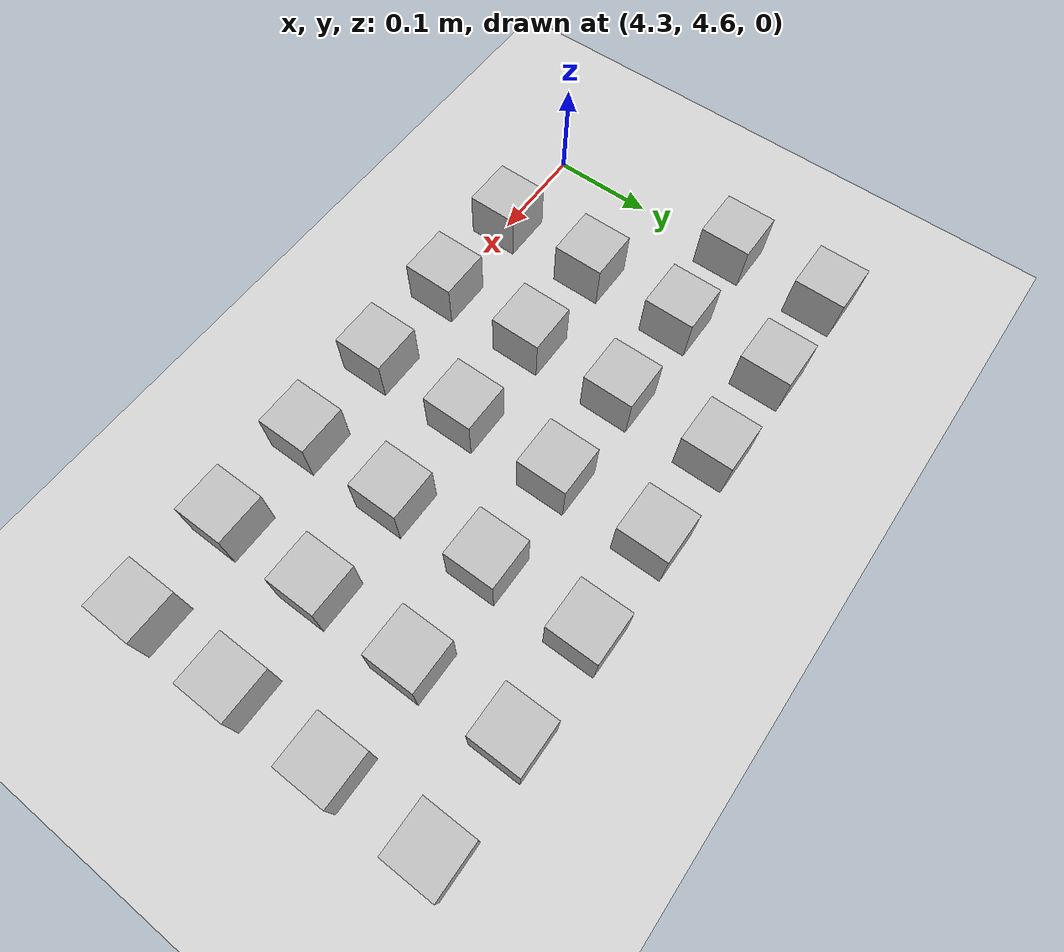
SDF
<sdf version="1.6">
 <world name="default">
  <model name="ground_plane">
   <static>1</static>
   <link name="link">
    <collision name="collision">
     <geometry><plane><normal>0 0 1</normal><size>100 100</size></plane></geometry>
     <surface><friction><ode><mu>100</mu><mu2>50</mu2></ode></friction></surface>
    </collision>
    <visual name="visual">
     <cast_shadows>0</cast_shadows>
     <geometry><plane><normal>0 0 1</normal><size>100 100</size></plane></geometry>
     <material>
      <script><uri>file://media/materials/scripts/gazebo.material</uri><name>Gazebo/Grey</name></script>
     </material>
    </visual>
   </link>
  </model>
  <model name="at226">
   <static>0</static>
   <link name="link">
    <inertial>
     <mass>0.01</mass>
     <inertia><ixx>4e-05</ixx><ixy>0</ixy><ixz>0</ixz><iyy>4e-05</iyy><iyz>0</iyz><izz>4e-05</izz></inertia>
    </inertial>
    <visual name="visual">
     <geometry><box><size>0.05 0.05 0.05</size></box></geometry>
     <material>
      <script>
       <uri>model://at0/materials/scripts</uri>
       <uri>model://at0/materials/textures</uri>
       <name>at0/Diffuse</name>
      </script>
     </material>
    </visual>
    <collision name="collision">
     <geometry><box><size>0.05 0.05 0.05</size></box></geometry>
     <surface><friction><ode><mu>0.8</mu><mu2>0.7</mu2></ode></friction></surface>
    </collision>
   </link>
   <pose>4.4 4.6 0.025 0 -0 0</pose>
  </model>
  <model name="at227">
   <static>0</static>
   <link name="link">
    <inertial>
     <mass>0.01</mass>
     <inertia><ixx>4e-05</ixx><ixy>0</ixy><ixz>0</ixz><iyy>4e-05</iyy><iyz>0</iyz><izz>4e-05</izz></inertia>
    </inertial>
    <visual name="visual">
     <geometry><box><size>0.05 0.05 0.05</size></box></geometry>
     <material>
      <script>
       <uri>model://at0/materials/scripts</uri>
       <uri>model://at0/materials/textures</uri>
       <name>at0/Diffuse</name>
      </script>
     </material>
    </visual>
    <collision name="collision">
     <geometry><box><size>0.05 0.05 0.05</size></box></geometry>
     <surface><friction><ode><mu>0.8</mu><mu2>0.7</mu2></ode></friction></surface>
    </collision>
   </link>
   <pose>4.5 4.6 0.025 0 -0 0</pose>
  </model>
  <model name="at228">
   <static>0</static>
   <link name="link">
    <inertial>
     <mass>0.01</mass>
     <inertia><ixx>4e-05</ixx><ixy>0</ixy><ixz>0</ixz><iyy>4e-05</iyy><iyz>0</iyz><izz>4e-05</izz></inertia>
    </inertial>
    <visual name="visual">
     <geometry><box><size>0.05 0.05 0.05</size></box></geometry>
     <material>
      <script>
       <uri>model://at0/materials/scripts</uri>
       <uri>model://at0/materials/textures</uri>
       <name>at0/Diffuse</name>
      </script>
     </material>
    </visual>
    <collision name="collision">
     <geometry><box><size>0.05 0.05 0.05</size></box></geometry>
     <surface><friction><ode><mu>0.8</mu><mu2>0.7</mu2></ode></friction></surface>
    </collision>
   </link>
   <pose>4.6 4.6 0.025 0 -0 0</pose>
  </model>
  <model name="at229">
   <static>0</static>
   <link name="link">
    <inertial>
     <mass>0.01</mass>
     <inertia><ixx>4e-05</ixx><ixy>0</ixy><ixz>0</ixz><iyy>4e-05</iyy><iyz>0</iyz><izz>4e-05</izz></inertia>
    </inertial>
    <visual name="visual">
     <geometry><box><size>0.05 0.05 0.05</size></box></geometry>
     <material>
      <script>
       <uri>model://at0/materials/scripts</uri>
       <uri>model://at0/materials/textures</uri>
       <name>at0/Diffuse</name>
      </script>
     </material>
    </visual>
    <collision name="collision">
     <geometry><box><size>0.05 0.05 0.05</size></box></geometry>
     <surface><friction><ode><mu>0.8</mu><mu2>0.7</mu2></ode></friction></surface>
    </collision>
   </link>
   <pose>4.7 4.6 0.025 0 -0 0</pose>
  </model>
  <model name="at230">
   <static>0</static>
   <link name="link">
    <inertial>
     <mass>0.01</mass>
     <inertia><ixx>4e-05</ixx><ixy>0</ixy><ixz>0</ixz><iyy>4e-05</iyy><iyz>0</iyz><izz>4e-05</izz></inertia>
    </inertial>
    <visual name="visual">
     <geometry><box><size>0.05 0.05 0.05</size></box></geometry>
     <material>
      <script>
       <uri>model://at0/materials/scripts</uri>
       <uri>model://at0/materials/textures</uri>
       <name>at0/Diffuse</name>
      </script>
     </material>
    </visual>
    <collision name="collision">
     <geometry><box><size>0.05 0.05 0.05</size></box></geometry>
     <surface><friction><ode><mu>0.8</mu><mu2>0.7</mu2></ode></friction></surface>
    </collision>
   </link>
   <pose>4.8 4.6 0.025 0 -0 0</pose>
  </model>
  <model name="at231">
   <static>0</static>
   <link name="link">
    <inertial>
     <mass>0.01</mass>
     <inertia><ixx>4e-05</ixx><ixy>0</ixy><ixz>0</ixz><iyy>4e-05</iyy><iyz>0</iyz><izz>4e-05</izz></inertia>
    </inertial>
    <visual name="visual">
     <geometry><box><size>0.05 0.05 0.05</size></box></geometry>
     <material>
      <script>
       <uri>model://at0/materials/scripts</uri>
       <uri>model://at0/materials/textures</uri>
       <name>at0/Diffuse</name>
      </script>
     </material>
    </visual>
    <collision name="collision">
     <geometry><box><size>0.05 0.05 0.05</size></box></geometry>
     <surface><friction><ode><mu>0.8</mu><mu2>0.7</mu2></ode></friction></surface>
    </collision>
   </link>
   <pose>4.9 4.6 0.025 0 -0 0</pose>
  </model>
  <model name="at234">
   <static>0</static>
   <link name="link">
    <inertial>
     <mass>0.01</mass>
     <inertia><ixx>4e-05</ixx><ixy>0</ixy><ixz>0</ixz><iyy>4e-05</iyy><iyz>0</iyz><izz>4e-05</izz></inertia>
    </inertial>
    <visual name="visual">
     <geometry><box><size>0.05 0.05 0.05</size></box></geometry>
     <material>
      <script>
       <uri>model://at0/materials/scripts</uri>
       <uri>model://at0/materials/textures</uri>
       <name>at0/Diffuse</name>
      </script>
     </material>
    </visual>
    <collision name="collision">
     <geometry><box><size>0.05 0.05 0.05</size></box></geometry>
     <surface><friction><ode><mu>0.8</mu><mu2>0.7</mu2></ode></friction></surface>
    </collision>
   </link>
   <pose>4.4 4.7 0.025 0 -0 0</pose>
  </model>
  <model name="at235">
   <static>0</static>
   <link name="link">
    <inertial>
     <mass>0.01</mass>
     <inertia><ixx>4e-05</ixx><ixy>0</ixy><ixz>0</ixz><iyy>4e-05</iyy><iyz>0</iyz><izz>4e-05</izz></inertia>
    </inertial>
    <visual name="visual">
     <geometry><box><size>0.05 0.05 0.05</size></box></geometry>
     <material>
      <script>
       <uri>model://at0/materials/scripts</uri>
       <uri>model://at0/materials/textures</uri>
       <name>at0/Diffuse</name>
      </script>
     </material>
    </visual>
    <collision name="collision">
     <geometry><box><size>0.05 0.05 0.05</size></box></geometry>
     <surface><friction><ode><mu>0.8</mu><mu2>0.7</mu2></ode></friction></surface>
    </collision>
   </link>
   <pose>4.5 4.7 0.025 0 -0 0</pose>
  </model>
  <model name="at236">
   <static>0</static>
   <link name="link">
    <inertial>
     <mass>0.01</mass>
     <inertia><ixx>4e-05</ixx><ixy>0</ixy><ixz>0</ixz><iyy>4e-05</iyy><iyz>0</iyz><izz>4e-05</izz></inertia>
    </inertial>
    <visual name="visual">
     <geometry><box><size>0.05 0.05 0.05</size></box></geometry>
     <material>
      <script>
       <uri>model://at0/materials/scripts</uri>
       <uri>model://at0/materials/textures</uri>
       <name>at0/Diffuse</name>
      </script>
     </material>
    </visual>
    <collision name="collision">
     <geometry><box><size>0.05 0.05 0.05</size></box></geometry>
     <surface><friction><ode><mu>0.8</mu><mu2>0.7</mu2></ode></friction></surface>
    </collision>
   </link>
   <pose>4.6 4.7 0.025 0 -0 0</pose>
  </model>
  <model name="at237">
   <static>0</static>
   <link name="link">
    <inertial>
     <mass>0.01</mass>
     <inertia><ixx>4e-05</ixx><ixy>0</ixy><ixz>0</ixz><iyy>4e-05</iyy><iyz>0</iyz><izz>4e-05</izz></inertia>
    </inertial>
    <visual name="visual">
     <geometry><box><size>0.05 0.05 0.05</size></box></geometry>
     <material>
      <script>
       <uri>model://at0/materials/scripts</uri>
       <uri>model://at0/materials/textures</uri>
       <name>at0/Diffuse</name>
      </script>
     </material>
    </visual>
    <collision name="collision">
     <geometry><box><size>0.05 0.05 0.05</size></box></geometry>
     <surface><friction><ode><mu>0.8</mu><mu2>0.7</mu2></ode></friction></surface>
    </collision>
   </link>
   <pose>4.7 4.7 0.025 0 -0 0</pose>
  </model>
  <model name="at238">
   <static>0</static>
   <link name="link">
    <inertial>
     <mass>0.01</mass>
     <inertia><ixx>4e-05</ixx><ixy>0</ixy><ixz>0</ixz><iyy>4e-05</iyy><iyz>0</iyz><izz>4e-05</izz></inertia>
    </inertial>
    <visual name="visual">
     <geometry><box><size>0.05 0.05 0.05</size></box></geometry>
     <material>
      <script>
       <uri>model://at0/materials/scripts</uri>
       <uri>model://at0/materials/textures</uri>
       <name>at0/Diffuse</name>
      </script>
     </material>
    </visual>
    <collision name="collision">
     <geometry><box><size>0.05 0.05 0.05</size></box></geometry>
     <surface><friction><ode><mu>0.8</mu><mu2>0.7</mu2></ode></friction></surface>
    </collision>
   </link>
   <pose>4.8 4.7 0.025 0 -0 0</pose>
  </model>
  <model name="at239">
   <static>0</static>
   <link name="link">
    <inertial>
     <mass>0.01</mass>
     <inertia><ixx>4e-05</ixx><ixy>0</ixy><ixz>0</ixz><iyy>4e-05</iyy><iyz>0</iyz><izz>4e-05</izz></inertia>
    </inertial>
    <visual name="visual">
     <geometry><box><size>0.05 0.05 0.05</size></box></geometry>
     <material>
      <script>
       <uri>model://at0/materials/scripts</uri>
       <uri>model://at0/materials/textures</uri>
       <name>at0/Diffuse</name>
      </script>
     </material>
    </visual>
    <collision name="collision">
     <geometry><box><size>0.05 0.05 0.05</size></box></geometry>
     <surface><friction><ode><mu>0.8</mu><mu2>0.7</mu2></ode></friction></surface>
    </collision>
   </link>
   <pose>4.9 4.7 0.025 0 -0 0</pose>
  </model>
  <model name="at241">
   <static>0</static>
   <link name="link">
    <inertial>
     <mass>0.01</mass>
     <inertia><ixx>4e-05</ixx><ixy>0</ixy><ixz>0</ixz><iyy>4e-05</iyy><iyz>0</iyz><izz>4e-05</izz></inertia>
    </inertial>
    <visual name="visual">
     <geometry><box><size>0.05 0.05 0.05</size></box></geometry>
     <material>
      <script>
       <uri>model://at0/materials/scripts</uri>
       <uri>model://at0/materials/textures</uri>
       <name>at0/Diffuse</name>
      </script>
     </material>
    </visual>
    <collision name="collision">
     <geometry><box><size>0.05 0.05 0.05</size></box></geometry>
     <surface><friction><ode><mu>0.8</mu><mu2>0.7</mu2></ode></friction></surface>
    </collision>
   </link>
   <pose>4.3 4.8 0.025 0 -0 0</pose>
  </model>
  <model name="at242">
   <static>0</static>
   <link name="link">
    <inertial>
     <mass>0.01</mass>
     <inertia><ixx>4e-05</ixx><ixy>0</ixy><ixz>0</ixz><iyy>4e-05</iyy><iyz>0</iyz><izz>4e-05</izz></inertia>
    </inertial>
    <visual name="visual">
     <geometry><box><size>0.05 0.05 0.05</size></box></geometry>
     <material>
      <script>
       <uri>model://at0/materials/scripts</uri>
       <uri>model://at0/materials/textures</uri>
       <name>at0/Diffuse</name>
      </script>
     </material>
    </visual>
    <collision name="collision">
     <geometry><box><size>0.05 0.05 0.05</size></box></geometry>
     <surface><friction><ode><mu>0.8</mu><mu2>0.7</mu2></ode></friction></surface>
    </collision>
   </link>
   <pose>4.4 4.8 0.025 0 -0 0</pose>
  </model>
  <model name="at243">
   <static>0</static>
   <link name="link">
    <inertial>
     <mass>0.01</mass>
     <inertia><ixx>4e-05</ixx><ixy>0</ixy><ixz>0</ixz><iyy>4e-05</iyy><iyz>0</iyz><izz>4e-05</izz></inertia>
    </inertial>
    <visual name="visual">
     <geometry><box><size>0.05 0.05 0.05</size></box></geometry>
     <material>
      <script>
       <uri>model://at0/materials/scripts</uri>
       <uri>model://at0/materials/textures</uri>
       <name>at0/Diffuse</name>
      </script>
     </material>
    </visual>
    <collision name="collision">
     <geometry><box><size>0.05 0.05 0.05</size></box></geometry>
     <surface><friction><ode><mu>0.8</mu><mu2>0.7</mu2></ode></friction></surface>
    </collision>
   </link>
   <pose>4.5 4.8 0.025 0 -0 0</pose>
  </model>
  <model name="at244">
   <static>0</static>
   <link name="link">
    <inertial>
     <mass>0.01</mass>
     <inertia><ixx>4e-05</ixx><ixy>0</ixy><ixz>0</ixz><iyy>4e-05</iyy><iyz>0</iyz><izz>4e-05</izz></inertia>
    </inertial>
    <visual name="visual">
     <geometry><box><size>0.05 0.05 0.05</size></box></geometry>
     <material>
      <script>
       <uri>model://at0/materials/scripts</uri>
       <uri>model://at0/materials/textures</uri>
       <name>at0/Diffuse</name>
      </script>
     </material>
    </visual>
    <collision name="collision">
     <geometry><box><size>0.05 0.05 0.05</size></box></geometry>
     <surface><friction><ode><mu>0.8</mu><mu2>0.7</mu2></ode></friction></surface>
    </collision>
   </link>
   <pose>4.6 4.8 0.025 0 -0 0</pose>
  </model>
  <model name="at245">
   <static>0</static>
   <link name="link">
    <inertial>
     <mass>0.01</mass>
     <inertia><ixx>4e-05</ixx><ixy>0</ixy><ixz>0</ixz><iyy>4e-05</iyy><iyz>0</iyz><izz>4e-05</izz></inertia>
    </inertial>
    <visual name="visual">
     <geometry><box><size>0.05 0.05 0.05</size></box></geometry>
     <material>
      <script>
       <uri>model://at0/materials/scripts</uri>
       <uri>model://at0/materials/textures</uri>
       <name>at0/Diffuse</name>
      </script>
     </material>
    </visual>
    <collision name="collision">
     <geometry><box><size>0.05 0.05 0.05</size></box></geometry>
     <surface><friction><ode><mu>0.8</mu><mu2>0.7</mu2></ode></friction></surface>
    </collision>
   </link>
   <pose>4.7 4.8 0.025 0 -0 0</pose>
  </model>
  <model name="at246">
   <static>0</static>
   <link name="link">
    <inertial>
     <mass>0.01</mass>
     <inertia><ixx>4e-05</ixx><ixy>0</ixy><ixz>0</ixz><iyy>4e-05</iyy><iyz>0</iyz><izz>4e-05</izz></inertia>
    </inertial>
    <visual name="visual">
     <geometry><box><size>0.05 0.05 0.05</size></box></geometry>
     <material>
      <script>
       <uri>model://at0/materials/scripts</uri>
       <uri>model://at0/materials/textures</uri>
       <name>at0/Diffuse</name>
      </script>
     </material>
    </visual>
    <collision name="collision">
     <geometry><box><size>0.05 0.05 0.05</size></box></geometry>
     <surface><friction><ode><mu>0.8</mu><mu2>0.7</mu2></ode></friction></surface>
    </collision>
   </link>
   <pose>4.8 4.8 0.025 0 -0 0</pose>
  </model>
  <model name="at247">
   <static>0</static>
   <link name="link">
    <inertial>
     <mass>0.01</mass>
     <inertia><ixx>4e-05</ixx><ixy>0</ixy><ixz>0</ixz><iyy>4e-05</iyy><iyz>0</iyz><izz>4e-05</izz></inertia>
    </inertial>
    <visual name="visual">
     <geometry><box><size>0.05 0.05 0.05</size></box></geometry>
     <material>
      <script>
       <uri>model://at0/materials/scripts</uri>
       <uri>model://at0/materials/textures</uri>
       <name>at0/Diffuse</name>
      </script>
     </material>
    </visual>
    <collision name="collision">
     <geometry><box><size>0.05 0.05 0.05</size></box></geometry>
     <surface><friction><ode><mu>0.8</mu><mu2>0.7</mu2></ode></friction></surface>
    </collision>
   </link>
   <pose>4.9 4.8 0.025 0 -0 0</pose>
  </model>
  <model name="at249">
   <static>0</static>
   <link name="link">
    <inertial>
     <mass>0.01</mass>
     <inertia><ixx>4e-05</ixx><ixy>0</ixy><ixz>0</ixz><iyy>4e-05</iyy><iyz>0</iyz><izz>4e-05</izz></inertia>
    </inertial>
    <visual name="visual">
     <geometry><box><size>0.05 0.05 0.05</size></box></geometry>
     <material>
      <script>
       <uri>model://at0/materials/scripts</uri>
       <uri>model://at0/materials/textures</uri>
       <name>at0/Diffuse</name>
      </script>
     </material>
    </visual>
    <collision name="collision">
     <geometry><box><size>0.05 0.05 0.05</size></box></geometry>
     <surface><friction><ode><mu>0.8</mu><mu2>0.7</mu2></ode></friction></surface>
    </collision>
   </link>
   <pose>4.3 4.9 0.025 0 -0 0</pose>
  </model>
  <model name="at250">
   <static>0</static>
   <link name="link">
    <inertial>
     <mass>0.01</mass>
     <inertia><ixx>4e-05</ixx><ixy>0</ixy><ixz>0</ixz><iyy>4e-05</iyy><iyz>0</iyz><izz>4e-05</izz></inertia>
    </inertial>
    <visual name="visual">
     <geometry><box><size>0.05 0.05 0.05</size></box></geometry>
     <material>
      <script>
       <uri>model://at0/materials/scripts</uri>
       <uri>model://at0/materials/textures</uri>
       <name>at0/Diffuse</name>
      </script>
     </material>
    </visual>
    <collision name="collision">
     <geometry><box><size>0.05 0.05 0.05</size></box></geometry>
     <surface><friction><ode><mu>0.8</mu><mu2>0.7</mu2></ode></friction></surface>
    </collision>
   </link>
   <pose>4.4 4.9 0.025 0 -0 0</pose>
  </model>
  <model name="at251">
   <static>0</static>
   <link name="link">
    <inertial>
     <mass>0.01</mass>
     <inertia><ixx>4e-05</ixx><ixy>0</ixy><ixz>0</ixz><iyy>4e-05</iyy><iyz>0</iyz><izz>4e-05</izz></inertia>
    </inertial>
    <visual name="visual">
     <geometry><box><size>0.05 0.05 0.05</size></box></geometry>
     <material>
      <script>
       <uri>model://at0/materials/scripts</uri>
       <uri>model://at0/materials/textures</uri>
       <name>at0/Diffuse</name>
      </script>
     </material>
    </visual>
    <collision name="collision">
     <geometry><box><size>0.05 0.05 0.05</size></box></geometry>
     <surface><friction><ode><mu>0.8</mu><mu2>0.7</mu2></ode></friction></surface>
    </collision>
   </link>
   <pose>4.5 4.9 0.025 0 -0 0</pose>
  </model>
  <model name="at252">
   <static>0</static>
   <link name="link">
    <inertial>
     <mass>0.01</mass>
     <inertia><ixx>4e-05</ixx><ixy>0</ixy><ixz>0</ixz><iyy>4e-05</iyy><iyz>0</iyz><izz>4e-05</izz></inertia>
    </inertial>
    <visual name="visual">
     <geometry><box><size>0.05 0.05 0.05</size></box></geometry>
     <material>
      <script>
       <uri>model://at0/materials/scripts</uri>
       <uri>model://at0/materials/textures</uri>
       <name>at0/Diffuse</name>
      </script>
     </material>
    </visual>
    <collision name="collision">
     <geometry><box><size>0.05 0.05 0.05</size></box></geometry>
     <surface><friction><ode><mu>0.8</mu><mu2>0.7</mu2></ode></friction></surface>
    </collision>
   </link>
   <pose>4.6 4.9 0.025 0 -0 0</pose>
  </model>
  <model name="at253">
   <static>0</static>
   <link name="link">
    <inertial>
     <mass>0.01</mass>
     <inertia><ixx>4e-05</ixx><ixy>0</ixy><ixz>0</ixz><iyy>4e-05</iyy><iyz>0</iyz><izz>4e-05</izz></inertia>
    </inertial>
    <visual name="visual">
     <geometry><box><size>0.05 0.05 0.05</size></box></geometry>
     <material>
      <script>
       <uri>model://at0/materials/scripts</uri>
       <uri>model://at0/materials/textures</uri>
       <name>at0/Diffuse</name>
      </script>
     </material>
    </visual>
    <collision name="collision">
     <geometry><box><size>0.05 0.05 0.05</size></box></geometry>
     <surface><friction><ode><mu>0.8</mu><mu2>0.7</mu2></ode></friction></surface>
    </collision>
   </link>
   <pose>4.7 4.9 0.025 0 -0 0</pose>
  </model>
  <model name="at254">
   <static>0</static>
   <link name="link">
    <inertial>
     <mass>0.01</mass>
     <inertia><ixx>4e-05</ixx><ixy>0</ixy><ixz>0</ixz><iyy>4e-05</iyy><iyz>0</iyz><izz>4e-05</izz></inertia>
    </inertial>
    <visual name="visual">
     <geometry><box><size>0.05 0.05 0.05</size></box></geometry>
     <material>
      <script>
       <uri>model://at0/materials/scripts</uri>
       <uri>model://at0/materials/textures</uri>
       <name>at0/Diffuse</name>
      </script>
     </material>
    </visual>
    <collision name="collision">
     <geometry><box><size>0.05 0.05 0.05</size></box></geometry>
     <surface><friction><ode><mu>0.8</mu><mu2>0.7</mu2></ode></friction></surface>
    </collision>
   </link>
   <pose>4.8 4.9 0.025 0 -0 0</pose>
  </model>
  <model name="at255">
   <static>0</static>
   <link name="link">
    <inertial>
     <mass>0.01</mass>
     <inertia><ixx>4e-05</ixx><ixy>0</ixy><ixz>0</ixz><iyy>4e-05</iyy><iyz>0</iyz><izz>4e-05</izz></inertia>
    </inertial>
    <visual name="visual">
     <geometry><box><size>0.05 0.05 0.05</size></box></geometry>
     <material>
      <script>
       <uri>model://at0/materials/scripts</uri>
       <uri>model://at0/materials/textures</uri>
       <name>at0/Diffuse</name>
      </script>
     </material>
    </visual>
    <collision name="collision">
     <geometry><box><size>0.05 0.05 0.05</size></box></geometry>
     <surface><friction><ode><mu>0.8</mu><mu2>0.7</mu2></ode></friction></surface>
    </collision>
   </link>
   <pose>4.9 4.9 0.025 0 -0 0</pose>
  </model>
 </world>
</sdf>
